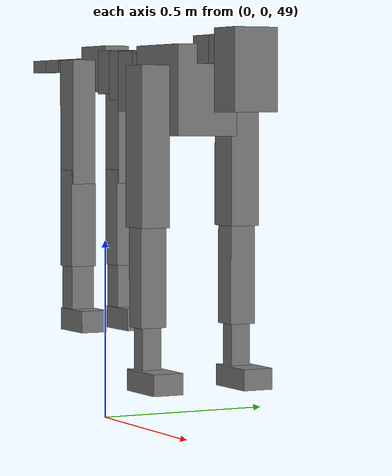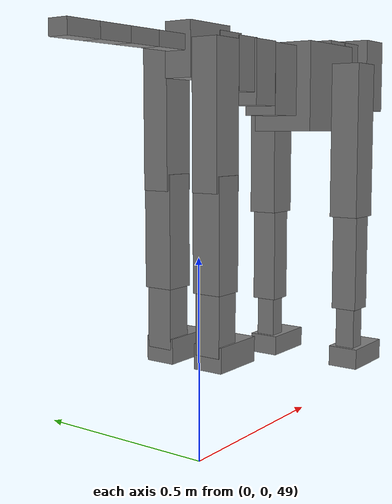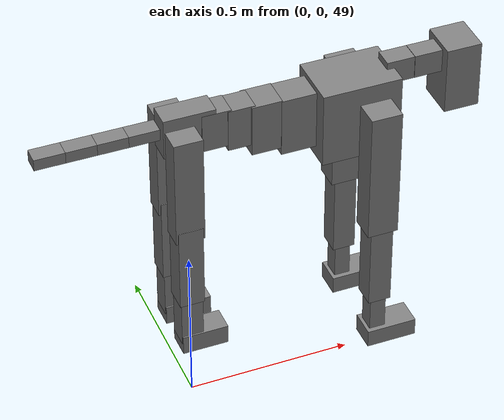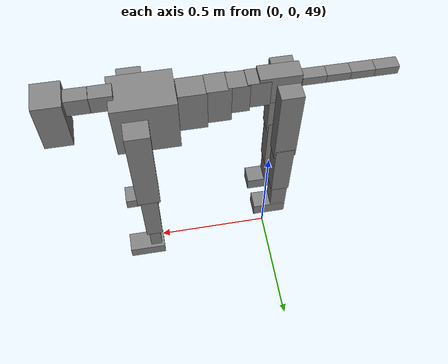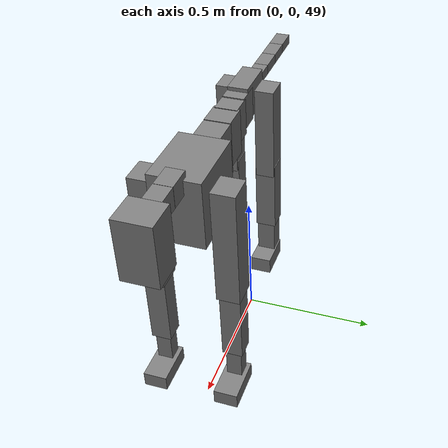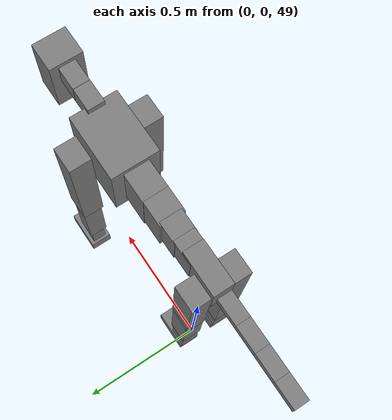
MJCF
<mujoco model="dog">

    <default>
        <joint armature="0.02" stiffness="1" damping="0.2" limited="true" />
        <geom condim="3" friction="1 0.05 0.05" margin="0.01" />
        <motor ctrllimited="true" ctrlrange="-1.0 1.0" forcelimited="true" gear="50" />
    </default>

    <compiler inertiafromgeom="true" angle="radian" />

    <option timestep="0.016" iterations="50" tolerance="1e-10" solver="Newton" jacobian="dense" cone="pyramidal" />

    <size nconmax="20000" njmax="60000" nstack="5000000" />
    <visual>
        <map force="0.1" zfar="30" />
        <rgba haze="0.15 0.25 0.35 1" />
        <quality shadowsize="2048" />
        <global offwidth="800" offheight="800" />
    </visual>

    <asset>
        <texture type="skybox" builtin="gradient" rgb1="0.3 0.5 0.7" rgb2="0 0 0" width="512" height="512" />
        <texture name="texplane" type="2d" builtin="checker" rgb1=".2 .3 .4" rgb2=".1 0.15 0.2" width="512" height="512" mark="cross" markrgb=".8 .8 .8" />
        <texture name="texgeom" type="cube" builtin="flat" mark="cross" width="127" height="1278" rgb1="0.8 0.6 0.4" rgb2="0.8 0.6 0.4" markrgb="1 1 1" random="0.01" />

        <material name="matplane" reflectance="0.3" texture="texplane" texrepeat="1 1" texuniform="true" />
        <material name="matgeom" texture="texgeom" texuniform="true" rgba="0.8 0.6 .4 1" />
    </asset>

    <worldbody>
        <geom name="floor" pos="0 0 0" size="0 0 .25" type="plane" material="matplane" condim="3" />

        <light directional="false" diffuse=".2 .2 .2" specular="0 0 0" pos="0 0 5" dir="0 0 -1" castshadow="false" />
        <light mode="targetbodycom" target="torso" directional="false" diffuse=".8 .8 .8" specular="0.3 0.3 0.3" pos="0 0 4.0" dir="0 0 -1" />

        <body name="root" pos="0 0 50">
            <freejoint name="root_1" />
            <geom type="box" pos="0 0 -0.02" size="0.0774  0.0358  0.063" density="2030" />

            <body name="spine1" pos="0.054 0 0">
                <joint name="spine1_y" axis="0 1 0" range="0 0.7" limited="true" />
                <geom type="box" pos="0.02375 0 -0.03" size="0.04375  0.0375  0.05985" density="2030" />

                <body name="spine2" pos="0.0612 0 0">
                    <joint name="spine2_y" axis="0 1 0" range="-0.15 0.15" limited="true" />
                    <geom type="box" pos="0.03555  0  -0.04" size="0.04055  0.039  0.06615" density="2030" />

                    <body name="spine3" pos="0.0730 0 0">
                        <joint name="spine3_y" axis="0 1 0" range="-0.15 0.15" limited="true" />
                        <geom type="box" pos="0.03555  0  -0.057" size="0.04555  0.0445  0.081" density="2030" />

                        <body name="spine4" pos="0.0780 0 0">
                            <joint name="spine4_y" axis="0 1 0" range="-0.15 0.15" limited="true" />
                            <geom type="box" pos="0.05265  0  -0.07" size="0.05265  0.045  0.09135" density="2030" />

                            <body name="torso" pos="0.1082 0 0">
                                <joint name="torso_y" axis="0 1 0" range="-0.15 0.15" limited="true" />
                                <geom type="box" pos="0.11925  0  -0.085" size="0.11925  0.085  0.11745" density="2030" />

                                <body name="neck1" pos="0.2160  0   0.0180">
                                    <joint name="neck1_y" axis="0 1 0" range="-1.2  -1" limited="true" />
                                    <geom type="box" pos="0.0423  0  0" size="0.0423  0.03  0.036" density="2325" />

                                    <body name="neck2" pos="0.0853  0  0">
                                        <joint name="neck2_y" axis="0 1 0" range="0.1  0" limited="true" />
                                        <geom type="box" pos="0.0423  0  0" size="0.0423  0.03  0.036" density="2325" />

                                        <body name="head" pos="0.0853  0  0">
                                            <joint name="head_y" axis="0 1 0" range="-0.3  -0.2" limited="true" />
                                            <geom type="box" pos="0.0531  0  -0.055" size="0.0531  0.06  0.1044" density="4030" />

                                        </body>
                                    </body>
                                </body>

                                <body name="front_shoulder" pos="0.156  0   -0.0480">
                                    <joint name="front_shoulder_y" axis="0 1 0" range="-1 1.5" limited="true" />
                                    <geom type="box" pos="0 0.13 -0.1809" size="0.0464  0.0397  0.2076" density="1158" />
                                    <geom type="box" pos="0 -0.13 -0.1809" size="0.0464  0.0397  0.2076" density="1158" />

                                    <body name="front_elbow" pos="0  0  -0.3619">
                                        <joint name="front_elbow_y" axis="0 1 0" range="-2 0" limited="true" />
                                        <geom type="box" pos="0 0.13 -0.1419" size="0.0345  0.0353  0.1419" density="1081" />
                                        <geom type="box" pos="0 -0.13 -0.1419" size="0.0345  0.0353  0.1419" density="1081" />

                                        <body name="front_wrist" pos="0  0  -0.2838">
                                            <joint name="front_wrist_y" axis="0 1 0" range="-0.2 0" limited="true" />
                                            <geom type="box" pos="0 0.13 -0.0621" size="0.0242  0.0268  0.0752" density="1664" />
                                            <geom type="box" pos="0 -0.13 -0.0621" size="0.0242  0.0268  0.0752" density="1664" />

                                            <body name="front_finger_end" pos="0  0  -0.1241">
                                                <joint name="front_finger_y" axis="0 1 0" range="-0.4 1" limited="true" />
                                                <geom type="box" pos="0.0417  0.13  -0.0127" size="0.0764  0.0417  0.0277" density="1515" />
                                                <geom type="box" pos="0.0417  -0.13  -0.0127" size="0.0764  0.0417  0.0277" density="1515" />

                                            </body>

                                        </body>
                                    </body>
                                </body>

                            </body>
                        </body>
                    </body>
                </body>
            </body>

            <body name="back_hip" pos="-0.03 0 -0.018">
                <joint name="back_hip_y" axis="0 1 0" range="-1.5 0.3" limited="true" />
                <geom type="box" pos="0 0.07 -0.1494" size="0.0431  0.0338  0.1722" density="1154" />
                <geom type="box" pos="0 -0.07 -0.1494" size="0.0431  0.0338  0.1722" density="1154" />

                <body name="back_knee" pos="0  0  -0.2989">
                    <joint name="back_knee_y" axis="0 1 0" range="0 2.8" limited="true" />
                    <geom type="box" pos="0 0.07 -0.1189" size="0.0372  0.0367  0.1345" density="1227" />
                    <geom type="box" pos="0 -0.07 -0.1189" size="0.0372  0.0367  0.1345" density="1227" />

                    <body name="back_ankle" pos="0  0  -0.2378">
                        <joint name="back_ankle_y" axis="0 1 0" range="-2.2 0" limited="true" />
                        <geom type="box" pos="0 0.07 -0.0747" size="0.0330  0.0330  0.0859" density="1284" />
                        <geom type="box" pos="0 -0.07 -0.0747" size="0.0330  0.0330  0.0859" density="1284" />

                        <body name="back_toe_end" pos="0  0  -0.1494">
                            <joint name="back_toe_y" axis="0 1 0" range="-0.4 1" limited="true" />
                            <geom type="box" pos="0.0378  0.07  -0.0153" size="0.0694  0.0378  0.0303" density="1515" />
                            <geom type="box" pos="0.0378  -0.07  -0.0153" size="0.0694  0.0378  0.0303" density="1515" />

                        </body>
                    </body>
                </body>
            </body>

            <body name="tail1" pos="-0.074 0 -0.006">
                <joint name="tail1_y" axis="0 1 0" range="-0.2 0.2" limited="true" />
                <geom type="box" pos="-0.0536  0  0" size="0.045  0.025  0.0175" density="1587" />

                <body name="tail2" pos="-0.09 0 0">
                    <joint name="tail2_y" axis="0 1 0" range="-0.2 0.2" limited="true" />
                    <geom type="box" pos="-0.0536  0  0" size="0.045  0.025  0.0175" density="1587" />

                    <body name="tail3" pos="-0.09 0 0">
                        <joint name="tail3_y" axis="0 1 0" range="-0.2 0.2" limited="true" />
                        <geom type="box" pos="-0.0536  0  0" size="0.045  0.025  0.0175" density="1587" />

                        <body name="tail4" pos="-0.09 0 0">
                            <joint name="tail4_y" axis="0 1 0" range="-0.2 0.2" limited="true" />
                            <geom type="box" pos="-0.0536  0  0" size="0.045  0.025  0.0175" density="1587" />

                        </body>
                    </body>
                </body>
            </body>
        </body>
    </worldbody>

    <actuator>
        <motor joint="spine1_y" forcerange="-150 150     " />
        <motor joint="spine2_y" forcerange="-150 150     " />
        <motor joint="spine3_y" forcerange="-150 150     " />
        <motor joint="spine4_y" forcerange="-150 150     " />
        <motor joint="torso_y" forcerange="-150 150     " />
        <motor joint="neck1_y" forcerange="-100 100       " />
        <motor joint="neck2_y" forcerange="-100 100       " />
        <motor joint="head_y" forcerange="-150 150       " />
        <motor joint="front_shoulder_y" forcerange="-183.15 181.45" />
        <motor joint="front_elbow_y" forcerange="-163.17 193.63" />
        <motor joint="front_wrist_y" forcerange="-101.03 113.68" />
        <motor joint="front_finger_y" forcerange="-90.34 91.92" />
        <motor joint="back_hip_y" forcerange="-332.00 318.56" />
        <motor joint="back_knee_y" forcerange="-338.35 395.28" />
        <motor joint="back_angle_y" forcerange="-208.83 218.75" />
        <motor joint="back_toe_y" forcerange="-129.86 92.93" />
        <motor joint="tail1_y" forcerange="-50 50     " />
        <motor joint="tail2_y" forcerange="-50 50     " />
        <motor joint="tail3_y" forcerange="-50 50     " />
        <motor joint="tail4_y" forcerange="-50 50     " />
    </actuator>
</mujoco>
